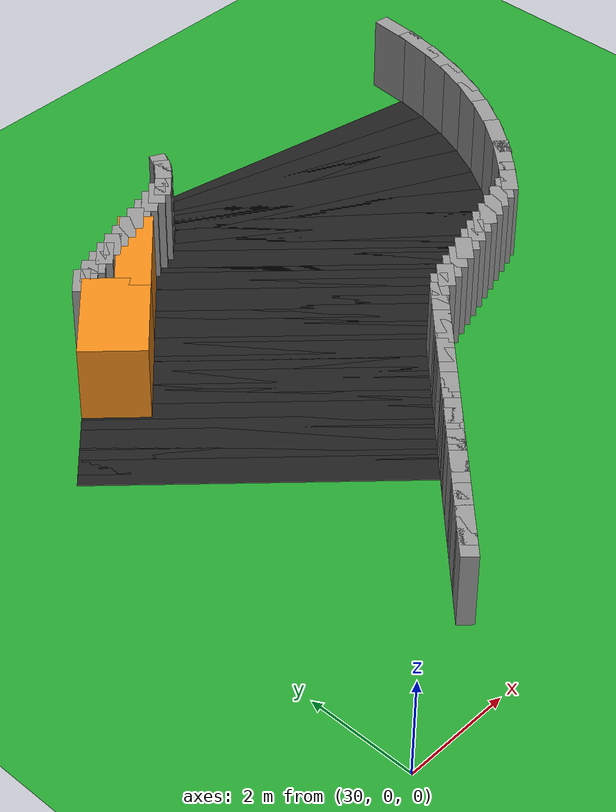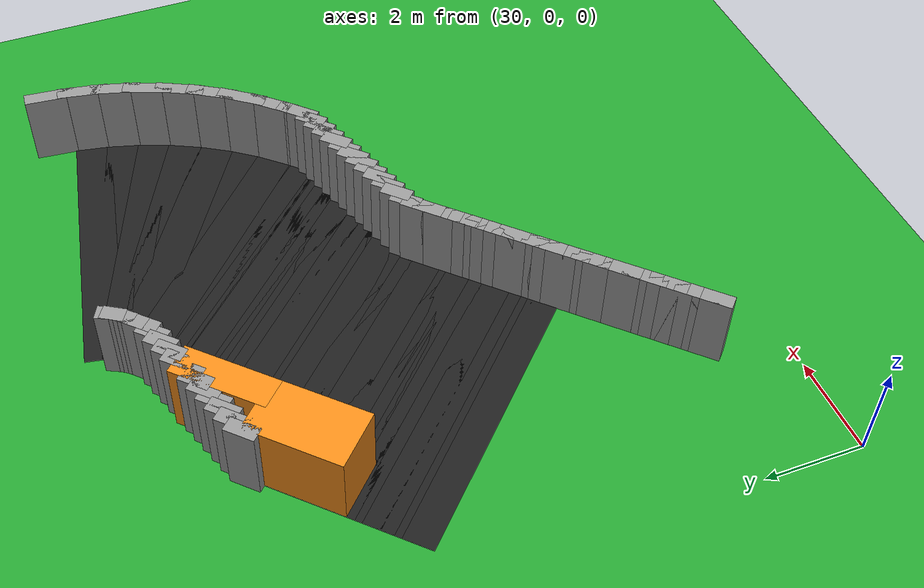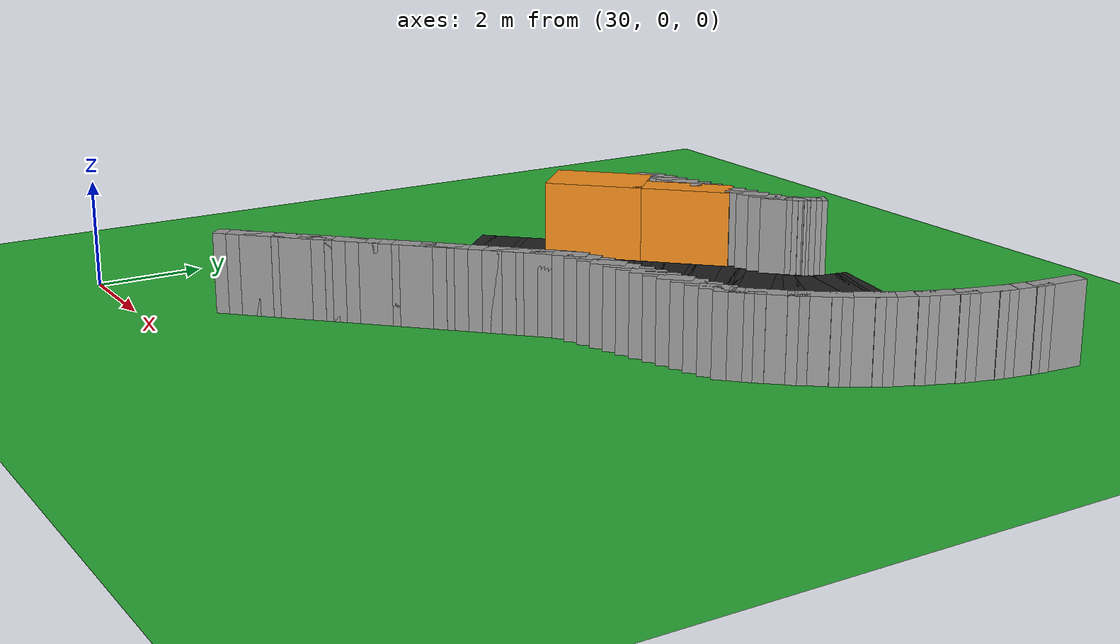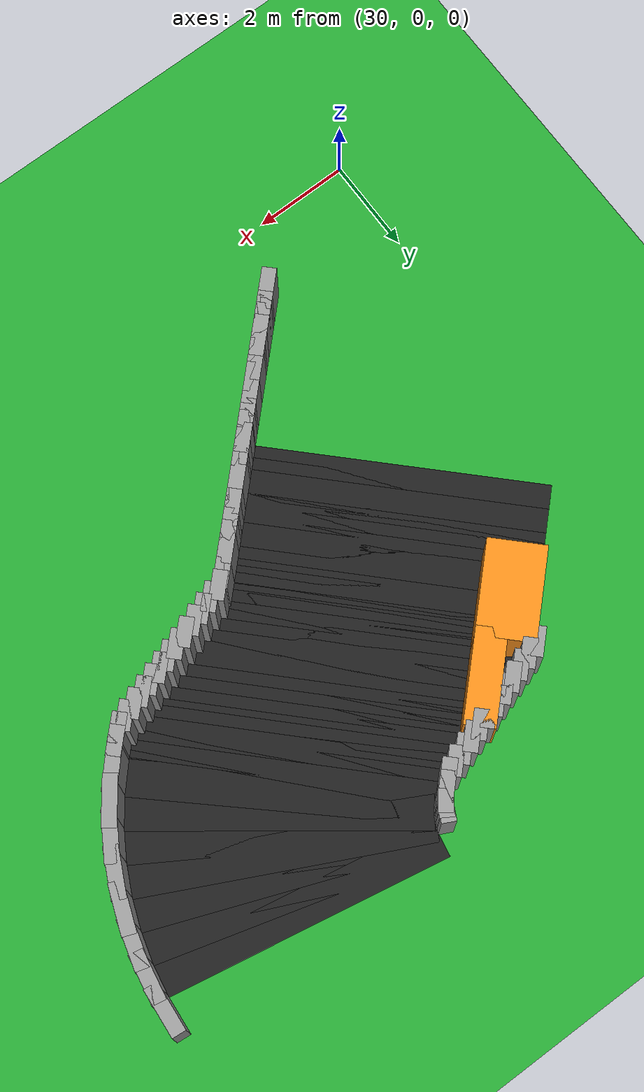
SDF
<sdf version="1.6">
 <world name="obstacle_asymturn">
  <include><uri>model://sun</uri></include>
  <model name="ground_plane">
   <static>true</static>
   <link name="link">
    <collision name="collision">
     <surface><friction><ode><mu>100</mu><mu2>50</mu2></ode></friction></surface>
     <geometry><plane><normal>0 0 1</normal><size>120 120</size></plane></geometry>
    </collision>
    <visual name="visual">
     <geometry><plane><normal>0 0 1</normal><size>120 120</size></plane></geometry>
     <material>
      <script><uri>file://media/materials/scripts/gazebo.material</uri><name>Gazebo/Green</name></script>
     </material>
    </visual>
   </link>
  </model>
  <model name="curbR_127">
   <static>true</static>
   <pose>32.978 1.553 0.750 0 0 0.78540</pose>
   <link name="link">
    <collision name="collision"><geometry><box><size>0.610 0.300 1.500</size></box></geometry></collision>
    <visual name="visual">
     <geometry><box><size>0.610 0.300 1.500</size></box></geometry>
     <material>
      <script><uri>file://media/materials/scripts/gazebo.material</uri><name>Gazebo/Grey</name></script>
     </material>
    </visual>
   </link>
  </model>
  <model name="curbR_128">
   <static>true</static>
   <pose>33.155 1.729 0.750 0 0 0.78540</pose>
   <link name="link">
    <collision name="collision"><geometry><box><size>0.610 0.300 1.500</size></box></geometry></collision>
    <visual name="visual">
     <geometry><box><size>0.610 0.300 1.500</size></box></geometry>
     <material>
      <script><uri>file://media/materials/scripts/gazebo.material</uri><name>Gazebo/Grey</name></script>
     </material>
    </visual>
   </link>
  </model>
  <model name="curbR_129">
   <static>true</static>
   <pose>33.332 1.906 0.750 0 0 0.78540</pose>
   <link name="link">
    <collision name="collision"><geometry><box><size>0.610 0.300 1.500</size></box></geometry></collision>
    <visual name="visual">
     <geometry><box><size>0.610 0.300 1.500</size></box></geometry>
     <material>
      <script><uri>file://media/materials/scripts/gazebo.material</uri><name>Gazebo/Grey</name></script>
     </material>
    </visual>
   </link>
  </model>
  <model name="curbR_130">
   <static>true</static>
   <pose>33.508 2.083 0.750 0 0 0.78540</pose>
   <link name="link">
    <collision name="collision"><geometry><box><size>0.610 0.300 1.500</size></box></geometry></collision>
    <visual name="visual">
     <geometry><box><size>0.610 0.300 1.500</size></box></geometry>
     <material>
      <script><uri>file://media/materials/scripts/gazebo.material</uri><name>Gazebo/Grey</name></script>
     </material>
    </visual>
   </link>
  </model>
  <model name="curbR_131">
   <static>true</static>
   <pose>33.685 2.260 0.750 0 0 0.78540</pose>
   <link name="link">
    <collision name="collision"><geometry><box><size>0.610 0.300 1.500</size></box></geometry></collision>
    <visual name="visual">
     <geometry><box><size>0.610 0.300 1.500</size></box></geometry>
     <material>
      <script><uri>file://media/materials/scripts/gazebo.material</uri><name>Gazebo/Grey</name></script>
     </material>
    </visual>
   </link>
  </model>
  <model name="curbR_132">
   <static>true</static>
   <pose>33.862 2.436 0.750 0 0 0.78540</pose>
   <link name="link">
    <collision name="collision"><geometry><box><size>0.610 0.300 1.500</size></box></geometry></collision>
    <visual name="visual">
     <geometry><box><size>0.610 0.300 1.500</size></box></geometry>
     <material>
      <script><uri>file://media/materials/scripts/gazebo.material</uri><name>Gazebo/Grey</name></script>
     </material>
    </visual>
   </link>
  </model>
  <model name="curbR_133">
   <static>true</static>
   <pose>34.039 2.613 0.750 0 0 0.78540</pose>
   <link name="link">
    <collision name="collision"><geometry><box><size>0.610 0.300 1.500</size></box></geometry></collision>
    <visual name="visual">
     <geometry><box><size>0.610 0.300 1.500</size></box></geometry>
     <material>
      <script><uri>file://media/materials/scripts/gazebo.material</uri><name>Gazebo/Grey</name></script>
     </material>
    </visual>
   </link>
  </model>
  <model name="curbR_134">
   <static>true</static>
   <pose>34.215 2.790 0.750 0 0 0.78540</pose>
   <link name="link">
    <collision name="collision"><geometry><box><size>0.610 0.300 1.500</size></box></geometry></collision>
    <visual name="visual">
     <geometry><box><size>0.610 0.300 1.500</size></box></geometry>
     <material>
      <script><uri>file://media/materials/scripts/gazebo.material</uri><name>Gazebo/Grey</name></script>
     </material>
    </visual>
   </link>
  </model>
  <model name="curbR_135">
   <static>true</static>
   <pose>34.392 2.967 0.750 0 0 0.78540</pose>
   <link name="link">
    <collision name="collision"><geometry><box><size>0.610 0.300 1.500</size></box></geometry></collision>
    <visual name="visual">
     <geometry><box><size>0.610 0.300 1.500</size></box></geometry>
     <material>
      <script><uri>file://media/materials/scripts/gazebo.material</uri><name>Gazebo/Grey</name></script>
     </material>
    </visual>
   </link>
  </model>
  <model name="curbR_136">
   <static>true</static>
   <pose>34.569 3.144 0.750 0 0 0.78540</pose>
   <link name="link">
    <collision name="collision"><geometry><box><size>0.610 0.300 1.500</size></box></geometry></collision>
    <visual name="visual">
     <geometry><box><size>0.610 0.300 1.500</size></box></geometry>
     <material>
      <script><uri>file://media/materials/scripts/gazebo.material</uri><name>Gazebo/Grey</name></script>
     </material>
    </visual>
   </link>
  </model>
  <model name="curbR_137">
   <static>true</static>
   <pose>34.746 3.320 0.750 0 0 0.78540</pose>
   <link name="link">
    <collision name="collision"><geometry><box><size>0.610 0.300 1.500</size></box></geometry></collision>
    <visual name="visual">
     <geometry><box><size>0.610 0.300 1.500</size></box></geometry>
     <material>
      <script><uri>file://media/materials/scripts/gazebo.material</uri><name>Gazebo/Grey</name></script>
     </material>
    </visual>
   </link>
  </model>
  <model name="curbR_138">
   <static>true</static>
   <pose>34.923 3.497 0.750 0 0 0.78540</pose>
   <link name="link">
    <collision name="collision"><geometry><box><size>0.610 0.300 1.500</size></box></geometry></collision>
    <visual name="visual">
     <geometry><box><size>0.610 0.300 1.500</size></box></geometry>
     <material>
      <script><uri>file://media/materials/scripts/gazebo.material</uri><name>Gazebo/Grey</name></script>
     </material>
    </visual>
   </link>
  </model>
  <model name="curbR_139">
   <static>true</static>
   <pose>35.099 3.674 0.750 0 0 0.78540</pose>
   <link name="link">
    <collision name="collision"><geometry><box><size>0.610 0.300 1.500</size></box></geometry></collision>
    <visual name="visual">
     <geometry><box><size>0.610 0.300 1.500</size></box></geometry>
     <material>
      <script><uri>file://media/materials/scripts/gazebo.material</uri><name>Gazebo/Grey</name></script>
     </material>
    </visual>
   </link>
  </model>
  <model name="asphalt_140">
   <static>true</static>
   <pose>33.049 6.078 0.005 0 0 0.78540</pose>
   <link name="link">
    <visual name="visual">
     <geometry><box><size>0.610 6.000 0.010</size></box></geometry>
     <material>
      <script><uri>file://media/materials/scripts/gazebo.material</uri><name>Gazebo/Black</name></script>
     </material>
    </visual>
   </link>
  </model>
  <model name="curbR_140">
   <static>true</static>
   <pose>35.276 3.851 0.750 0 0 0.78540</pose>
   <link name="link">
    <collision name="collision"><geometry><box><size>0.610 0.300 1.500</size></box></geometry></collision>
    <visual name="visual">
     <geometry><box><size>0.610 0.300 1.500</size></box></geometry>
     <material>
      <script><uri>file://media/materials/scripts/gazebo.material</uri><name>Gazebo/Grey</name></script>
     </material>
    </visual>
   </link>
  </model>
  <model name="asphalt_141">
   <static>true</static>
   <pose>33.225 6.255 0.005 0 0 0.78540</pose>
   <link name="link">
    <visual name="visual">
     <geometry><box><size>0.610 6.000 0.010</size></box></geometry>
     <material>
      <script><uri>file://media/materials/scripts/gazebo.material</uri><name>Gazebo/Black</name></script>
     </material>
    </visual>
   </link>
  </model>
  <model name="curbR_141">
   <static>true</static>
   <pose>35.453 4.027 0.750 0 0 0.78540</pose>
   <link name="link">
    <collision name="collision"><geometry><box><size>0.610 0.300 1.500</size></box></geometry></collision>
    <visual name="visual">
     <geometry><box><size>0.610 0.300 1.500</size></box></geometry>
     <material>
      <script><uri>file://media/materials/scripts/gazebo.material</uri><name>Gazebo/Grey</name></script>
     </material>
    </visual>
   </link>
  </model>
  <model name="asphalt_142">
   <static>true</static>
   <pose>33.402 6.432 0.005 0 0 0.78540</pose>
   <link name="link">
    <visual name="visual">
     <geometry><box><size>0.610 6.000 0.010</size></box></geometry>
     <material>
      <script><uri>file://media/materials/scripts/gazebo.material</uri><name>Gazebo/Black</name></script>
     </material>
    </visual>
   </link>
  </model>
  <model name="curbR_142">
   <static>true</static>
   <pose>35.630 4.204 0.750 0 0 0.78540</pose>
   <link name="link">
    <collision name="collision"><geometry><box><size>0.610 0.300 1.500</size></box></geometry></collision>
    <visual name="visual">
     <geometry><box><size>0.610 0.300 1.500</size></box></geometry>
     <material>
      <script><uri>file://media/materials/scripts/gazebo.material</uri><name>Gazebo/Grey</name></script>
     </material>
    </visual>
   </link>
  </model>
  <model name="asphalt_143">
   <static>true</static>
   <pose>33.579 6.608 0.005 0 0 0.78540</pose>
   <link name="link">
    <visual name="visual">
     <geometry><box><size>0.610 6.000 0.010</size></box></geometry>
     <material>
      <script><uri>file://media/materials/scripts/gazebo.material</uri><name>Gazebo/Black</name></script>
     </material>
    </visual>
   </link>
  </model>
  <model name="curbR_143">
   <static>true</static>
   <pose>35.806 4.381 0.750 0 0 0.78540</pose>
   <link name="link">
    <collision name="collision"><geometry><box><size>0.610 0.300 1.500</size></box></geometry></collision>
    <visual name="visual">
     <geometry><box><size>0.610 0.300 1.500</size></box></geometry>
     <material>
      <script><uri>file://media/materials/scripts/gazebo.material</uri><name>Gazebo/Grey</name></script>
     </material>
    </visual>
   </link>
  </model>
  <model name="asphalt_144">
   <static>true</static>
   <pose>33.756 6.785 0.005 0 0 0.78540</pose>
   <link name="link">
    <visual name="visual">
     <geometry><box><size>0.610 6.000 0.010</size></box></geometry>
     <material>
      <script><uri>file://media/materials/scripts/gazebo.material</uri><name>Gazebo/Black</name></script>
     </material>
    </visual>
   </link>
  </model>
  <model name="curbR_144">
   <static>true</static>
   <pose>35.983 4.558 0.750 0 0 0.78540</pose>
   <link name="link">
    <collision name="collision"><geometry><box><size>0.610 0.300 1.500</size></box></geometry></collision>
    <visual name="visual">
     <geometry><box><size>0.610 0.300 1.500</size></box></geometry>
     <material>
      <script><uri>file://media/materials/scripts/gazebo.material</uri><name>Gazebo/Grey</name></script>
     </material>
    </visual>
   </link>
  </model>
  <model name="asphalt_145">
   <static>true</static>
   <pose>33.933 6.962 0.005 0 0 0.78540</pose>
   <link name="link">
    <visual name="visual">
     <geometry><box><size>0.610 6.000 0.010</size></box></geometry>
     <material>
      <script><uri>file://media/materials/scripts/gazebo.material</uri><name>Gazebo/Black</name></script>
     </material>
    </visual>
   </link>
  </model>
  <model name="curbR_145">
   <static>true</static>
   <pose>36.160 4.735 0.750 0 0 0.78540</pose>
   <link name="link">
    <collision name="collision"><geometry><box><size>0.610 0.300 1.500</size></box></geometry></collision>
    <visual name="visual">
     <geometry><box><size>0.610 0.300 1.500</size></box></geometry>
     <material>
      <script><uri>file://media/materials/scripts/gazebo.material</uri><name>Gazebo/Grey</name></script>
     </material>
    </visual>
   </link>
  </model>
  <model name="asphalt_146">
   <static>true</static>
   <pose>34.109 7.139 0.005 0 0 0.78540</pose>
   <link name="link">
    <visual name="visual">
     <geometry><box><size>0.610 6.000 0.010</size></box></geometry>
     <material>
      <script><uri>file://media/materials/scripts/gazebo.material</uri><name>Gazebo/Black</name></script>
     </material>
    </visual>
   </link>
  </model>
  <model name="curbR_146">
   <static>true</static>
   <pose>36.337 4.911 0.750 0 0 0.78540</pose>
   <link name="link">
    <collision name="collision"><geometry><box><size>0.610 0.300 1.500</size></box></geometry></collision>
    <visual name="visual">
     <geometry><box><size>0.610 0.300 1.500</size></box></geometry>
     <material>
      <script><uri>file://media/materials/scripts/gazebo.material</uri><name>Gazebo/Grey</name></script>
     </material>
    </visual>
   </link>
  </model>
  <model name="asphalt_147">
   <static>true</static>
   <pose>34.286 7.315 0.005 0 0 0.78540</pose>
   <link name="link">
    <visual name="visual">
     <geometry><box><size>0.610 6.000 0.010</size></box></geometry>
     <material>
      <script><uri>file://media/materials/scripts/gazebo.material</uri><name>Gazebo/Black</name></script>
     </material>
    </visual>
   </link>
  </model>
  <model name="curbR_147">
   <static>true</static>
   <pose>36.514 5.088 0.750 0 0 0.78540</pose>
   <link name="link">
    <collision name="collision"><geometry><box><size>0.610 0.300 1.500</size></box></geometry></collision>
    <visual name="visual">
     <geometry><box><size>0.610 0.300 1.500</size></box></geometry>
     <material>
      <script><uri>file://media/materials/scripts/gazebo.material</uri><name>Gazebo/Grey</name></script>
     </material>
    </visual>
   </link>
  </model>
  <model name="asphalt_148">
   <static>true</static>
   <pose>34.463 7.492 0.005 0 0 0.78540</pose>
   <link name="link">
    <visual name="visual">
     <geometry><box><size>0.610 6.000 0.010</size></box></geometry>
     <material>
      <script><uri>file://media/materials/scripts/gazebo.material</uri><name>Gazebo/Black</name></script>
     </material>
    </visual>
   </link>
  </model>
  <model name="curbR_148">
   <static>true</static>
   <pose>36.690 5.265 0.750 0 0 0.78540</pose>
   <link name="link">
    <collision name="collision"><geometry><box><size>0.610 0.300 1.500</size></box></geometry></collision>
    <visual name="visual">
     <geometry><box><size>0.610 0.300 1.500</size></box></geometry>
     <material>
      <script><uri>file://media/materials/scripts/gazebo.material</uri><name>Gazebo/Grey</name></script>
     </material>
    </visual>
   </link>
  </model>
  <model name="asphalt_149">
   <static>true</static>
   <pose>34.640 7.669 0.005 0 0 0.78540</pose>
   <link name="link">
    <visual name="visual">
     <geometry><box><size>0.610 6.000 0.010</size></box></geometry>
     <material>
      <script><uri>file://media/materials/scripts/gazebo.material</uri><name>Gazebo/Black</name></script>
     </material>
    </visual>
   </link>
  </model>
  <model name="curbR_149">
   <static>true</static>
   <pose>36.867 5.442 0.750 0 0 0.78540</pose>
   <link name="link">
    <collision name="collision"><geometry><box><size>0.610 0.300 1.500</size></box></geometry></collision>
    <visual name="visual">
     <geometry><box><size>0.610 0.300 1.500</size></box></geometry>
     <material>
      <script><uri>file://media/materials/scripts/gazebo.material</uri><name>Gazebo/Grey</name></script>
     </material>
    </visual>
   </link>
  </model>
  <model name="asphalt_150">
   <static>true</static>
   <pose>34.816 7.846 0.005 0 0 0.78540</pose>
   <link name="link">
    <visual name="visual">
     <geometry><box><size>0.610 6.000 0.010</size></box></geometry>
     <material>
      <script><uri>file://media/materials/scripts/gazebo.material</uri><name>Gazebo/Black</name></script>
     </material>
    </visual>
   </link>
  </model>
  <model name="curbR_150">
   <static>true</static>
   <pose>37.044 5.618 0.750 0 0 0.78540</pose>
   <link name="link">
    <collision name="collision"><geometry><box><size>0.610 0.300 1.500</size></box></geometry></collision>
    <visual name="visual">
     <geometry><box><size>0.610 0.300 1.500</size></box></geometry>
     <material>
      <script><uri>file://media/materials/scripts/gazebo.material</uri><name>Gazebo/Grey</name></script>
     </material>
    </visual>
   </link>
  </model>
  <model name="asphalt_151">
   <static>true</static>
   <pose>34.993 8.023 0.005 0 0 0.78540</pose>
   <link name="link">
    <visual name="visual">
     <geometry><box><size>0.610 6.000 0.010</size></box></geometry>
     <material>
      <script><uri>file://media/materials/scripts/gazebo.material</uri><name>Gazebo/Black</name></script>
     </material>
    </visual>
   </link>
  </model>
  <model name="curbR_151">
   <static>true</static>
   <pose>37.221 5.795 0.750 0 0 0.78540</pose>
   <link name="link">
    <collision name="collision"><geometry><box><size>0.610 0.300 1.500</size></box></geometry></collision>
    <visual name="visual">
     <geometry><box><size>0.610 0.300 1.500</size></box></geometry>
     <material>
      <script><uri>file://media/materials/scripts/gazebo.material</uri><name>Gazebo/Grey</name></script>
     </material>
    </visual>
   </link>
  </model>
  <model name="asphalt_152">
   <static>true</static>
   <pose>35.188 8.182 0.005 0 0 0.78540</pose>
   <link name="link">
    <visual name="visual">
     <geometry><box><size>0.610 6.000 0.010</size></box></geometry>
     <material>
      <script><uri>file://media/materials/scripts/gazebo.material</uri><name>Gazebo/Black</name></script>
     </material>
    </visual>
   </link>
  </model>
  <model name="curbR_152">
   <static>true</static>
   <pose>37.415 5.954 0.750 0 0 0.78540</pose>
   <link name="link">
    <collision name="collision"><geometry><box><size>0.610 0.300 1.500</size></box></geometry></collision>
    <visual name="visual">
     <geometry><box><size>0.610 0.300 1.500</size></box></geometry>
     <material>
      <script><uri>file://media/materials/scripts/gazebo.material</uri><name>Gazebo/Grey</name></script>
     </material>
    </visual>
   </link>
  </model>
  <model name="asphalt_153">
   <static>true</static>
   <pose>35.453 8.270 0.005 0 0 0.78540</pose>
   <link name="link">
    <visual name="visual">
     <geometry><box><size>0.610 6.000 0.010</size></box></geometry>
     <material>
      <script><uri>file://media/materials/scripts/gazebo.material</uri><name>Gazebo/Black</name></script>
     </material>
    </visual>
   </link>
  </model>
  <model name="curbL_153">
   <static>true</static>
   <pose>33.225 10.498 0.750 0 0 0.78540</pose>
   <link name="link">
    <collision name="collision"><geometry><box><size>0.610 0.300 1.500</size></box></geometry></collision>
    <visual name="visual">
     <geometry><box><size>0.610 0.300 1.500</size></box></geometry>
     <material>
      <script><uri>file://media/materials/scripts/gazebo.material</uri><name>Gazebo/Grey</name></script>
     </material>
    </visual>
   </link>
  </model>
  <model name="curbR_153">
   <static>true</static>
   <pose>37.680 6.043 0.750 0 0 0.78540</pose>
   <link name="link">
    <collision name="collision"><geometry><box><size>0.610 0.300 1.500</size></box></geometry></collision>
    <visual name="visual">
     <geometry><box><size>0.610 0.300 1.500</size></box></geometry>
     <material>
      <script><uri>file://media/materials/scripts/gazebo.material</uri><name>Gazebo/Grey</name></script>
     </material>
    </visual>
   </link>
  </model>
  <model name="asphalt_154">
   <static>true</static>
   <pose>35.718 8.359 0.005 0 0 0.78540</pose>
   <link name="link">
    <visual name="visual">
     <geometry><box><size>0.610 6.000 0.010</size></box></geometry>
     <material>
      <script><uri>file://media/materials/scripts/gazebo.material</uri><name>Gazebo/Black</name></script>
     </material>
    </visual>
   </link>
  </model>
  <model name="curbL_154">
   <static>true</static>
   <pose>33.491 10.586 0.750 0 0 0.78540</pose>
   <link name="link">
    <collision name="collision"><geometry><box><size>0.610 0.300 1.500</size></box></geometry></collision>
    <visual name="visual">
     <geometry><box><size>0.610 0.300 1.500</size></box></geometry>
     <material>
      <script><uri>file://media/materials/scripts/gazebo.material</uri><name>Gazebo/Grey</name></script>
     </material>
    </visual>
   </link>
  </model>
  <model name="curbR_154">
   <static>true</static>
   <pose>37.945 6.131 0.750 0 0 0.78540</pose>
   <link name="link">
    <collision name="collision"><geometry><box><size>0.610 0.300 1.500</size></box></geometry></collision>
    <visual name="visual">
     <geometry><box><size>0.610 0.300 1.500</size></box></geometry>
     <material>
      <script><uri>file://media/materials/scripts/gazebo.material</uri><name>Gazebo/Grey</name></script>
     </material>
    </visual>
   </link>
  </model>
  <model name="asphalt_155">
   <static>true</static>
   <pose>35.983 8.447 0.005 0 0 0.78540</pose>
   <link name="link">
    <visual name="visual">
     <geometry><box><size>0.610 6.000 0.010</size></box></geometry>
     <material>
      <script><uri>file://media/materials/scripts/gazebo.material</uri><name>Gazebo/Black</name></script>
     </material>
    </visual>
   </link>
  </model>
  <model name="curbL_155">
   <static>true</static>
   <pose>33.756 10.674 0.750 0 0 0.78540</pose>
   <link name="link">
    <collision name="collision"><geometry><box><size>0.610 0.300 1.500</size></box></geometry></collision>
    <visual name="visual">
     <geometry><box><size>0.610 0.300 1.500</size></box></geometry>
     <material>
      <script><uri>file://media/materials/scripts/gazebo.material</uri><name>Gazebo/Grey</name></script>
     </material>
    </visual>
   </link>
  </model>
  <model name="curbR_155">
   <static>true</static>
   <pose>38.210 6.220 0.750 0 0 0.78540</pose>
   <link name="link">
    <collision name="collision"><geometry><box><size>0.610 0.300 1.500</size></box></geometry></collision>
    <visual name="visual">
     <geometry><box><size>0.610 0.300 1.500</size></box></geometry>
     <material>
      <script><uri>file://media/materials/scripts/gazebo.material</uri><name>Gazebo/Grey</name></script>
     </material>
    </visual>
   </link>
  </model>
  <model name="asphalt_156">
   <static>true</static>
   <pose>36.248 8.535 0.005 0 0 0.78540</pose>
   <link name="link">
    <visual name="visual">
     <geometry><box><size>0.610 6.000 0.010</size></box></geometry>
     <material>
      <script><uri>file://media/materials/scripts/gazebo.material</uri><name>Gazebo/Black</name></script>
     </material>
    </visual>
   </link>
  </model>
  <model name="curbL_156">
   <static>true</static>
   <pose>34.021 10.763 0.750 0 0 0.78540</pose>
   <link name="link">
    <collision name="collision"><geometry><box><size>0.610 0.300 1.500</size></box></geometry></collision>
    <visual name="visual">
     <geometry><box><size>0.610 0.300 1.500</size></box></geometry>
     <material>
      <script><uri>file://media/materials/scripts/gazebo.material</uri><name>Gazebo/Grey</name></script>
     </material>
    </visual>
   </link>
  </model>
  <model name="curbR_156">
   <static>true</static>
   <pose>38.476 6.308 0.750 0 0 0.78540</pose>
   <link name="link">
    <collision name="collision"><geometry><box><size>0.610 0.300 1.500</size></box></geometry></collision>
    <visual name="visual">
     <geometry><box><size>0.610 0.300 1.500</size></box></geometry>
     <material>
      <script><uri>file://media/materials/scripts/gazebo.material</uri><name>Gazebo/Grey</name></script>
     </material>
    </visual>
   </link>
  </model>
  <model name="asphalt_157">
   <static>true</static>
   <pose>36.513 8.624 0.005 0 0 0.78540</pose>
   <link name="link">
    <visual name="visual">
     <geometry><box><size>0.610 6.000 0.010</size></box></geometry>
     <material>
      <script><uri>file://media/materials/scripts/gazebo.material</uri><name>Gazebo/Black</name></script>
     </material>
    </visual>
   </link>
  </model>
  <model name="curbL_157">
   <static>true</static>
   <pose>34.286 10.851 0.750 0 0 0.78540</pose>
   <link name="link">
    <collision name="collision"><geometry><box><size>0.610 0.300 1.500</size></box></geometry></collision>
    <visual name="visual">
     <geometry><box><size>0.610 0.300 1.500</size></box></geometry>
     <material>
      <script><uri>file://media/materials/scripts/gazebo.material</uri><name>Gazebo/Grey</name></script>
     </material>
    </visual>
   </link>
  </model>
  <model name="curbR_157">
   <static>true</static>
   <pose>38.741 6.396 0.750 0 0 0.78540</pose>
   <link name="link">
    <collision name="collision"><geometry><box><size>0.610 0.300 1.500</size></box></geometry></collision>
    <visual name="visual">
     <geometry><box><size>0.610 0.300 1.500</size></box></geometry>
     <material>
      <script><uri>file://media/materials/scripts/gazebo.material</uri><name>Gazebo/Grey</name></script>
     </material>
    </visual>
   </link>
  </model>
  <model name="asphalt_158">
   <static>true</static>
   <pose>36.779 8.712 0.005 0 0 0.78540</pose>
   <link name="link">
    <visual name="visual">
     <geometry><box><size>0.610 6.000 0.010</size></box></geometry>
     <material>
      <script><uri>file://media/materials/scripts/gazebo.material</uri><name>Gazebo/Black</name></script>
     </material>
    </visual>
   </link>
  </model>
  <model name="curbL_158">
   <static>true</static>
   <pose>34.551 10.939 0.750 0 0 0.78540</pose>
   <link name="link">
    <collision name="collision"><geometry><box><size>0.610 0.300 1.500</size></box></geometry></collision>
    <visual name="visual">
     <geometry><box><size>0.610 0.300 1.500</size></box></geometry>
     <material>
      <script><uri>file://media/materials/scripts/gazebo.material</uri><name>Gazebo/Grey</name></script>
     </material>
    </visual>
   </link>
  </model>
  <model name="curbR_158">
   <static>true</static>
   <pose>39.006 6.485 0.750 0 0 0.78540</pose>
   <link name="link">
    <collision name="collision"><geometry><box><size>0.610 0.300 1.500</size></box></geometry></collision>
    <visual name="visual">
     <geometry><box><size>0.610 0.300 1.500</size></box></geometry>
     <material>
      <script><uri>file://media/materials/scripts/gazebo.material</uri><name>Gazebo/Grey</name></script>
     </material>
    </visual>
   </link>
  </model>
  <model name="asphalt_159">
   <static>true</static>
   <pose>37.044 8.800 0.005 0 0 0.78540</pose>
   <link name="link">
    <visual name="visual">
     <geometry><box><size>0.610 6.000 0.010</size></box></geometry>
     <material>
      <script><uri>file://media/materials/scripts/gazebo.material</uri><name>Gazebo/Black</name></script>
     </material>
    </visual>
   </link>
  </model>
  <model name="curbL_159">
   <static>true</static>
   <pose>34.816 11.028 0.750 0 0 0.78540</pose>
   <link name="link">
    <collision name="collision"><geometry><box><size>0.610 0.300 1.500</size></box></geometry></collision>
    <visual name="visual">
     <geometry><box><size>0.610 0.300 1.500</size></box></geometry>
     <material>
      <script><uri>file://media/materials/scripts/gazebo.material</uri><name>Gazebo/Grey</name></script>
     </material>
    </visual>
   </link>
  </model>
  <model name="curbR_159">
   <static>true</static>
   <pose>39.271 6.573 0.750 0 0 0.78540</pose>
   <link name="link">
    <collision name="collision"><geometry><box><size>0.610 0.300 1.500</size></box></geometry></collision>
    <visual name="visual">
     <geometry><box><size>0.610 0.300 1.500</size></box></geometry>
     <material>
      <script><uri>file://media/materials/scripts/gazebo.material</uri><name>Gazebo/Grey</name></script>
     </material>
    </visual>
   </link>
  </model>
  <model name="asphalt_160">
   <static>true</static>
   <pose>37.309 8.889 0.005 0 0 0.78540</pose>
   <link name="link">
    <visual name="visual">
     <geometry><box><size>0.610 6.000 0.010</size></box></geometry>
     <material>
      <script><uri>file://media/materials/scripts/gazebo.material</uri><name>Gazebo/Black</name></script>
     </material>
    </visual>
   </link>
  </model>
  <model name="curbL_160">
   <static>true</static>
   <pose>35.082 11.116 0.750 0 0 0.78540</pose>
   <link name="link">
    <collision name="collision"><geometry><box><size>0.610 0.300 1.500</size></box></geometry></collision>
    <visual name="visual">
     <geometry><box><size>0.610 0.300 1.500</size></box></geometry>
     <material>
      <script><uri>file://media/materials/scripts/gazebo.material</uri><name>Gazebo/Grey</name></script>
     </material>
    </visual>
   </link>
  </model>
  <model name="curbR_160">
   <static>true</static>
   <pose>39.536 6.661 0.750 0 0 0.78540</pose>
   <link name="link">
    <collision name="collision"><geometry><box><size>0.610 0.300 1.500</size></box></geometry></collision>
    <visual name="visual">
     <geometry><box><size>0.610 0.300 1.500</size></box></geometry>
     <material>
      <script><uri>file://media/materials/scripts/gazebo.material</uri><name>Gazebo/Grey</name></script>
     </material>
    </visual>
   </link>
  </model>
  <model name="asphalt_161">
   <static>true</static>
   <pose>37.574 8.977 0.005 0 0 0.78540</pose>
   <link name="link">
    <visual name="visual">
     <geometry><box><size>0.610 6.000 0.010</size></box></geometry>
     <material>
      <script><uri>file://media/materials/scripts/gazebo.material</uri><name>Gazebo/Black</name></script>
     </material>
    </visual>
   </link>
  </model>
  <model name="curbL_161">
   <static>true</static>
   <pose>35.347 11.205 0.750 0 0 0.78540</pose>
   <link name="link">
    <collision name="collision"><geometry><box><size>0.610 0.300 1.500</size></box></geometry></collision>
    <visual name="visual">
     <geometry><box><size>0.610 0.300 1.500</size></box></geometry>
     <material>
      <script><uri>file://media/materials/scripts/gazebo.material</uri><name>Gazebo/Grey</name></script>
     </material>
    </visual>
   </link>
  </model>
  <model name="curbR_161">
   <static>true</static>
   <pose>39.801 6.750 0.750 0 0 0.78540</pose>
   <link name="link">
    <collision name="collision"><geometry><box><size>0.610 0.300 1.500</size></box></geometry></collision>
    <visual name="visual">
     <geometry><box><size>0.610 0.300 1.500</size></box></geometry>
     <material>
      <script><uri>file://media/materials/scripts/gazebo.material</uri><name>Gazebo/Grey</name></script>
     </material>
    </visual>
   </link>
  </model>
  <model name="asphalt_162">
   <static>true</static>
   <pose>37.839 9.066 0.005 0 0 0.78540</pose>
   <link name="link">
    <visual name="visual">
     <geometry><box><size>0.610 6.000 0.010</size></box></geometry>
     <material>
      <script><uri>file://media/materials/scripts/gazebo.material</uri><name>Gazebo/Black</name></script>
     </material>
    </visual>
   </link>
  </model>
  <model name="curbL_162">
   <static>true</static>
   <pose>35.612 11.293 0.750 0 0 0.78540</pose>
   <link name="link">
    <collision name="collision"><geometry><box><size>0.610 0.300 1.500</size></box></geometry></collision>
    <visual name="visual">
     <geometry><box><size>0.610 0.300 1.500</size></box></geometry>
     <material>
      <script><uri>file://media/materials/scripts/gazebo.material</uri><name>Gazebo/Grey</name></script>
     </material>
    </visual>
   </link>
  </model>
  <model name="curbR_162">
   <static>true</static>
   <pose>40.067 6.838 0.750 0 0 0.78540</pose>
   <link name="link">
    <collision name="collision"><geometry><box><size>0.610 0.300 1.500</size></box></geometry></collision>
    <visual name="visual">
     <geometry><box><size>0.610 0.300 1.500</size></box></geometry>
     <material>
      <script><uri>file://media/materials/scripts/gazebo.material</uri><name>Gazebo/Grey</name></script>
     </material>
    </visual>
   </link>
  </model>
  <model name="asphalt_163">
   <static>true</static>
   <pose>38.104 9.154 0.005 0 0 0.78540</pose>
   <link name="link">
    <visual name="visual">
     <geometry><box><size>0.610 6.000 0.010</size></box></geometry>
     <material>
      <script><uri>file://media/materials/scripts/gazebo.material</uri><name>Gazebo/Black</name></script>
     </material>
    </visual>
   </link>
  </model>
  <model name="curbL_163">
   <static>true</static>
   <pose>35.877 11.381 0.750 0 0 0.78540</pose>
   <link name="link">
    <collision name="collision"><geometry><box><size>0.610 0.300 1.500</size></box></geometry></collision>
    <visual name="visual">
     <geometry><box><size>0.610 0.300 1.500</size></box></geometry>
     <material>
      <script><uri>file://media/materials/scripts/gazebo.material</uri><name>Gazebo/Grey</name></script>
     </material>
    </visual>
   </link>
  </model>
  <model name="curbR_163">
   <static>true</static>
   <pose>40.332 6.927 0.750 0 0 0.78540</pose>
   <link name="link">
    <collision name="collision"><geometry><box><size>0.610 0.300 1.500</size></box></geometry></collision>
    <visual name="visual">
     <geometry><box><size>0.610 0.300 1.500</size></box></geometry>
     <material>
      <script><uri>file://media/materials/scripts/gazebo.material</uri><name>Gazebo/Grey</name></script>
     </material>
    </visual>
   </link>
  </model>
  <model name="asphalt_164">
   <static>true</static>
   <pose>38.352 9.260 0.005 0 0 0.78540</pose>
   <link name="link">
    <visual name="visual">
     <geometry><box><size>0.610 6.000 0.010</size></box></geometry>
     <material>
      <script><uri>file://media/materials/scripts/gazebo.material</uri><name>Gazebo/Black</name></script>
     </material>
    </visual>
   </link>
  </model>
  <model name="curbL_164">
   <static>true</static>
   <pose>36.125 11.487 0.750 0 0 0.78540</pose>
   <link name="link">
    <collision name="collision"><geometry><box><size>0.610 0.300 1.500</size></box></geometry></collision>
    <visual name="visual">
     <geometry><box><size>0.610 0.300 1.500</size></box></geometry>
     <material>
      <script><uri>file://media/materials/scripts/gazebo.material</uri><name>Gazebo/Grey</name></script>
     </material>
    </visual>
   </link>
  </model>
  <model name="curbR_164">
   <static>true</static>
   <pose>40.579 7.033 0.750 0 0 0.78540</pose>
   <link name="link">
    <collision name="collision"><geometry><box><size>0.610 0.300 1.500</size></box></geometry></collision>
    <visual name="visual">
     <geometry><box><size>0.610 0.300 1.500</size></box></geometry>
     <material>
      <script><uri>file://media/materials/scripts/gazebo.material</uri><name>Gazebo/Grey</name></script>
     </material>
    </visual>
   </link>
  </model>
  <model name="asphalt_165">
   <static>true</static>
   <pose>38.529 9.437 0.005 0 0 0.78540</pose>
   <link name="link">
    <visual name="visual">
     <geometry><box><size>0.610 6.000 0.010</size></box></geometry>
     <material>
      <script><uri>file://media/materials/scripts/gazebo.material</uri><name>Gazebo/Black</name></script>
     </material>
    </visual>
   </link>
  </model>
  <model name="curbL_165">
   <static>true</static>
   <pose>36.301 11.664 0.750 0 0 0.78540</pose>
   <link name="link">
    <collision name="collision"><geometry><box><size>0.610 0.300 1.500</size></box></geometry></collision>
    <visual name="visual">
     <geometry><box><size>0.610 0.300 1.500</size></box></geometry>
     <material>
      <script><uri>file://media/materials/scripts/gazebo.material</uri><name>Gazebo/Grey</name></script>
     </material>
    </visual>
   </link>
  </model>
  <model name="curbR_165">
   <static>true</static>
   <pose>40.756 7.209 0.750 0 0 0.78540</pose>
   <link name="link">
    <collision name="collision"><geometry><box><size>0.610 0.300 1.500</size></box></geometry></collision>
    <visual name="visual">
     <geometry><box><size>0.610 0.300 1.500</size></box></geometry>
     <material>
      <script><uri>file://media/materials/scripts/gazebo.material</uri><name>Gazebo/Grey</name></script>
     </material>
    </visual>
   </link>
  </model>
  <model name="asphalt_166">
   <static>true</static>
   <pose>38.748 9.669 0.005 0 0 0.83160</pose>
   <link name="link">
    <visual name="visual">
     <geometry><box><size>0.748 6.000 0.010</size></box></geometry>
     <material>
      <script><uri>file://media/materials/scripts/gazebo.material</uri><name>Gazebo/Black</name></script>
     </material>
    </visual>
   </link>
  </model>
  <model name="curbL_166">
   <static>true</static>
   <pose>36.422 11.788 0.750 0 0 0.83160</pose>
   <link name="link">
    <collision name="collision"><geometry><box><size>0.457 0.300 1.500</size></box></geometry></collision>
    <visual name="visual">
     <geometry><box><size>0.457 0.300 1.500</size></box></geometry>
     <material>
      <script><uri>file://media/materials/scripts/gazebo.material</uri><name>Gazebo/Grey</name></script>
     </material>
    </visual>
   </link>
  </model>
  <model name="curbR_166">
   <static>true</static>
   <pose>41.073 7.549 0.750 0 0 0.83160</pose>
   <link name="link">
    <collision name="collision"><geometry><box><size>1.039 0.300 1.500</size></box></geometry></collision>
    <visual name="visual">
     <geometry><box><size>1.039 0.300 1.500</size></box></geometry>
     <material>
      <script><uri>file://media/materials/scripts/gazebo.material</uri><name>Gazebo/Grey</name></script>
     </material>
    </visual>
   </link>
  </model>
  <model name="asphalt_167">
   <static>true</static>
   <pose>38.995 9.967 0.005 0 0 0.92400</pose>
   <link name="link">
    <visual name="visual">
     <geometry><box><size>0.748 6.000 0.010</size></box></geometry>
     <material>
      <script><uri>file://media/materials/scripts/gazebo.material</uri><name>Gazebo/Black</name></script>
     </material>
    </visual>
   </link>
  </model>
  <model name="curbL_167">
   <static>true</static>
   <pose>36.484 11.863 0.750 0 0 0.92400</pose>
   <link name="link">
    <collision name="collision"><geometry><box><size>0.457 0.300 1.500</size></box></geometry></collision>
    <visual name="visual">
     <geometry><box><size>0.457 0.300 1.500</size></box></geometry>
     <material>
      <script><uri>file://media/materials/scripts/gazebo.material</uri><name>Gazebo/Grey</name></script>
     </material>
    </visual>
   </link>
  </model>
  <model name="curbR_167">
   <static>true</static>
   <pose>41.507 8.070 0.750 0 0 0.92400</pose>
   <link name="link">
    <collision name="collision"><geometry><box><size>1.039 0.300 1.500</size></box></geometry></collision>
    <visual name="visual">
     <geometry><box><size>1.039 0.300 1.500</size></box></geometry>
     <material>
      <script><uri>file://media/materials/scripts/gazebo.material</uri><name>Gazebo/Grey</name></script>
     </material>
    </visual>
   </link>
  </model>
  <model name="asphalt_168">
   <static>true</static>
   <pose>39.215 10.287 0.005 0 0 1.01640</pose>
   <link name="link">
    <visual name="visual">
     <geometry><box><size>0.748 6.000 0.010</size></box></geometry>
     <material>
      <script><uri>file://media/materials/scripts/gazebo.material</uri><name>Gazebo/Black</name></script>
     </material>
    </visual>
   </link>
  </model>
  <model name="curbL_168">
   <static>true</static>
   <pose>36.539 11.943 0.750 0 0 1.01640</pose>
   <link name="link">
    <collision name="collision"><geometry><box><size>0.457 0.300 1.500</size></box></geometry></collision>
    <visual name="visual">
     <geometry><box><size>0.457 0.300 1.500</size></box></geometry>
     <material>
      <script><uri>file://media/materials/scripts/gazebo.material</uri><name>Gazebo/Grey</name></script>
     </material>
    </visual>
   </link>
  </model>
  <model name="curbR_168">
   <static>true</static>
   <pose>41.890 8.630 0.750 0 0 1.01640</pose>
   <link name="link">
    <collision name="collision"><geometry><box><size>1.039 0.300 1.500</size></box></geometry></collision>
    <visual name="visual">
     <geometry><box><size>1.039 0.300 1.500</size></box></geometry>
     <material>
      <script><uri>file://media/materials/scripts/gazebo.material</uri><name>Gazebo/Grey</name></script>
     </material>
    </visual>
   </link>
  </model>
  <model name="asphalt_169">
   <static>true</static>
   <pose>39.403 10.625 0.005 0 0 1.10880</pose>
   <link name="link">
    <visual name="visual">
     <geometry><box><size>0.748 6.000 0.010</size></box></geometry>
     <material>
      <script><uri>file://media/materials/scripts/gazebo.material</uri><name>Gazebo/Black</name></script>
     </material>
    </visual>
   </link>
  </model>
  <model name="curbL_169">
   <static>true</static>
   <pose>36.586 12.028 0.750 0 0 1.10880</pose>
   <link name="link">
    <collision name="collision"><geometry><box><size>0.457 0.300 1.500</size></box></geometry></collision>
    <visual name="visual">
     <geometry><box><size>0.457 0.300 1.500</size></box></geometry>
     <material>
      <script><uri>file://media/materials/scripts/gazebo.material</uri><name>Gazebo/Grey</name></script>
     </material>
    </visual>
   </link>
  </model>
  <model name="curbR_169">
   <static>true</static>
   <pose>42.220 9.223 0.750 0 0 1.10880</pose>
   <link name="link">
    <collision name="collision"><geometry><box><size>1.039 0.300 1.500</size></box></geometry></collision>
    <visual name="visual">
     <geometry><box><size>1.039 0.300 1.500</size></box></geometry>
     <material>
      <script><uri>file://media/materials/scripts/gazebo.material</uri><name>Gazebo/Grey</name></script>
     </material>
    </visual>
   </link>
  </model>
  <model name="asphalt_170">
   <static>true</static>
   <pose>39.560 10.980 0.005 0 0 1.20120</pose>
   <link name="link">
    <visual name="visual">
     <geometry><box><size>0.748 6.000 0.010</size></box></geometry>
     <material>
      <script><uri>file://media/materials/scripts/gazebo.material</uri><name>Gazebo/Black</name></script>
     </material>
    </visual>
   </link>
  </model>
  <model name="curbR_170">
   <static>true</static>
   <pose>42.494 9.843 0.750 0 0 1.20120</pose>
   <link name="link">
    <collision name="collision"><geometry><box><size>1.039 0.300 1.500</size></box></geometry></collision>
    <visual name="visual">
     <geometry><box><size>1.039 0.300 1.500</size></box></geometry>
     <material>
      <script><uri>file://media/materials/scripts/gazebo.material</uri><name>Gazebo/Grey</name></script>
     </material>
    </visual>
   </link>
  </model>
  <model name="asphalt_171">
   <static>true</static>
   <pose>39.683 11.347 0.005 0 0 1.29360</pose>
   <link name="link">
    <visual name="visual">
     <geometry><box><size>0.748 6.000 0.010</size></box></geometry>
     <material>
      <script><uri>file://media/materials/scripts/gazebo.material</uri><name>Gazebo/Black</name></script>
     </material>
    </visual>
   </link>
  </model>
  <model name="curbR_171">
   <static>true</static>
   <pose>42.709 10.486 0.750 0 0 1.29360</pose>
   <link name="link">
    <collision name="collision"><geometry><box><size>1.039 0.300 1.500</size></box></geometry></collision>
    <visual name="visual">
     <geometry><box><size>1.039 0.300 1.500</size></box></geometry>
     <material>
      <script><uri>file://media/materials/scripts/gazebo.material</uri><name>Gazebo/Grey</name></script>
     </material>
    </visual>
   </link>
  </model>
  <model name="asphalt_172">
   <static>true</static>
   <pose>39.772 11.725 0.005 0 0 1.38600</pose>
   <link name="link">
    <visual name="visual">
     <geometry><box><size>0.748 6.000 0.010</size></box></geometry>
     <material>
      <script><uri>file://media/materials/scripts/gazebo.material</uri><name>Gazebo/Black</name></script>
     </material>
    </visual>
   </link>
  </model>
  <model name="curbR_172">
   <static>true</static>
   <pose>42.865 11.146 0.750 0 0 1.38600</pose>
   <link name="link">
    <collision name="collision"><geometry><box><size>1.039 0.300 1.500</size></box></geometry></collision>
    <visual name="visual">
     <geometry><box><size>1.039 0.300 1.500</size></box></geometry>
     <material>
      <script><uri>file://media/materials/scripts/gazebo.material</uri><name>Gazebo/Grey</name></script>
     </material>
    </visual>
   </link>
  </model>
  <model name="curbR_173">
   <static>true</static>
   <pose>42.958 11.818 0.750 0 0 1.47840</pose>
   <link name="link">
    <collision name="collision"><geometry><box><size>1.039 0.300 1.500</size></box></geometry></collision>
    <visual name="visual">
     <geometry><box><size>1.039 0.300 1.500</size></box></geometry>
     <material>
      <script><uri>file://media/materials/scripts/gazebo.material</uri><name>Gazebo/Grey</name></script>
     </material>
    </visual>
   </link>
  </model>
  <model name="obs_3">
   <static>true</static>
   <pose>32.996 9.419 0.750 0 0 0.78540</pose>
   <link name="link">
    <collision name="collision"><geometry><box><size>1.950 1.200 1.500</size></box></geometry></collision>
    <visual name="visual">
     <geometry><box><size>1.950 1.200 1.500</size></box></geometry>
     <material>
      <script><uri>file://media/materials/scripts/gazebo.material</uri><name>Gazebo/Orange</name></script>
     </material>
    </visual>
   </link>
  </model>
  <model name="obs_4">
   <static>true</static>
   <pose>34.432 10.458 0.750 0 0 0.78540</pose>
   <link name="link">
    <collision name="collision"><geometry><box><size>1.950 0.637 1.500</size></box></geometry></collision>
    <visual name="visual">
     <geometry><box><size>1.950 0.637 1.500</size></box></geometry>
     <material>
      <script><uri>file://media/materials/scripts/gazebo.material</uri><name>Gazebo/Orange</name></script>
     </material>
    </visual>
   </link>
  </model>
 </world>
</sdf>
